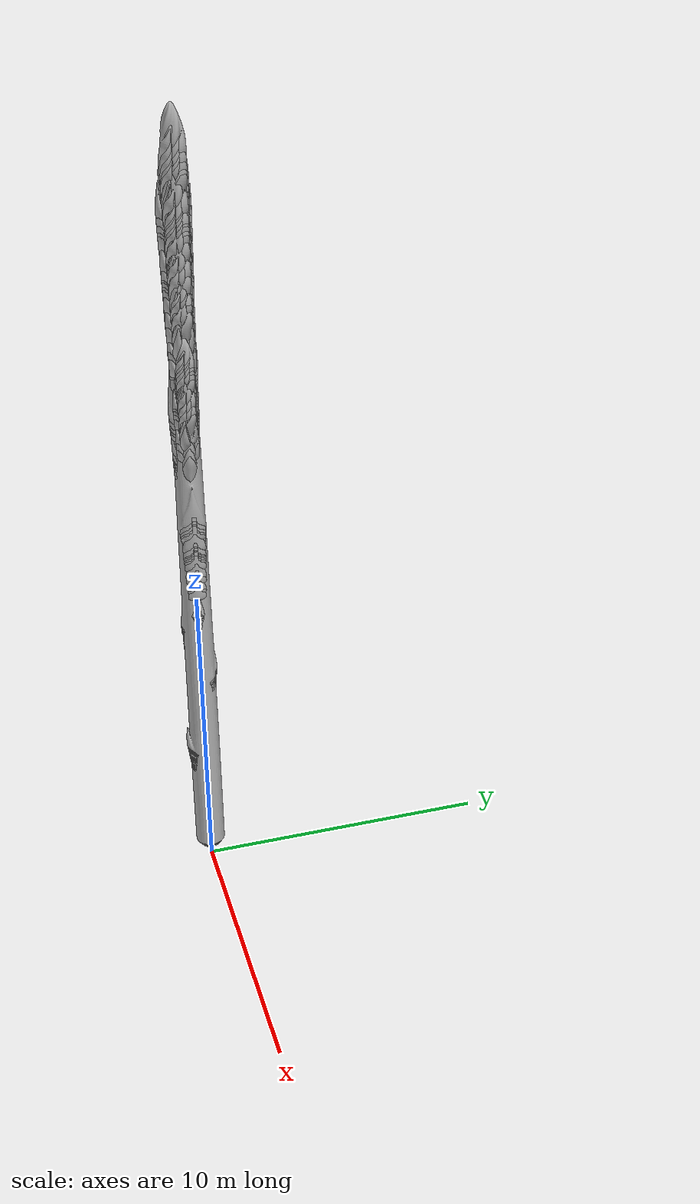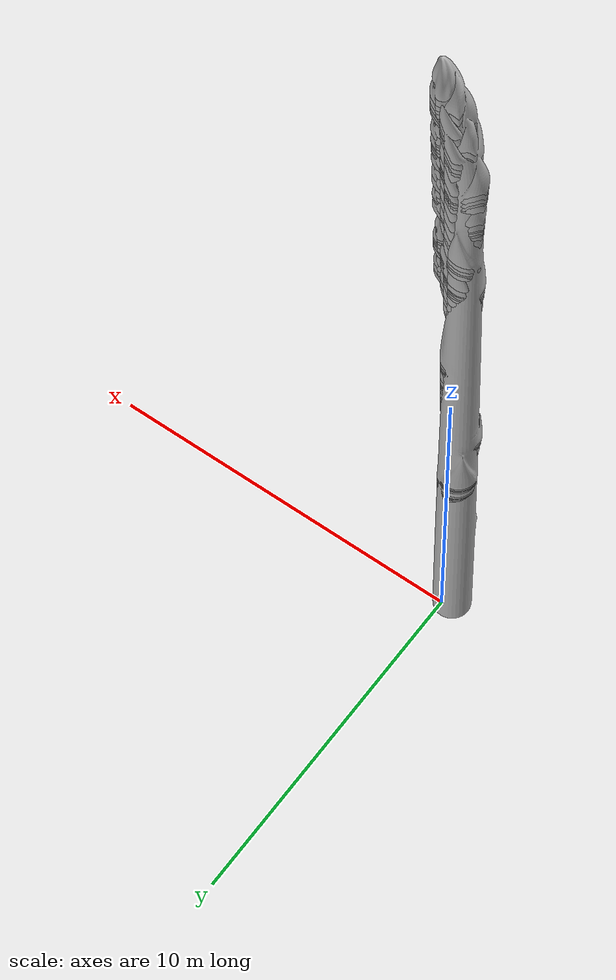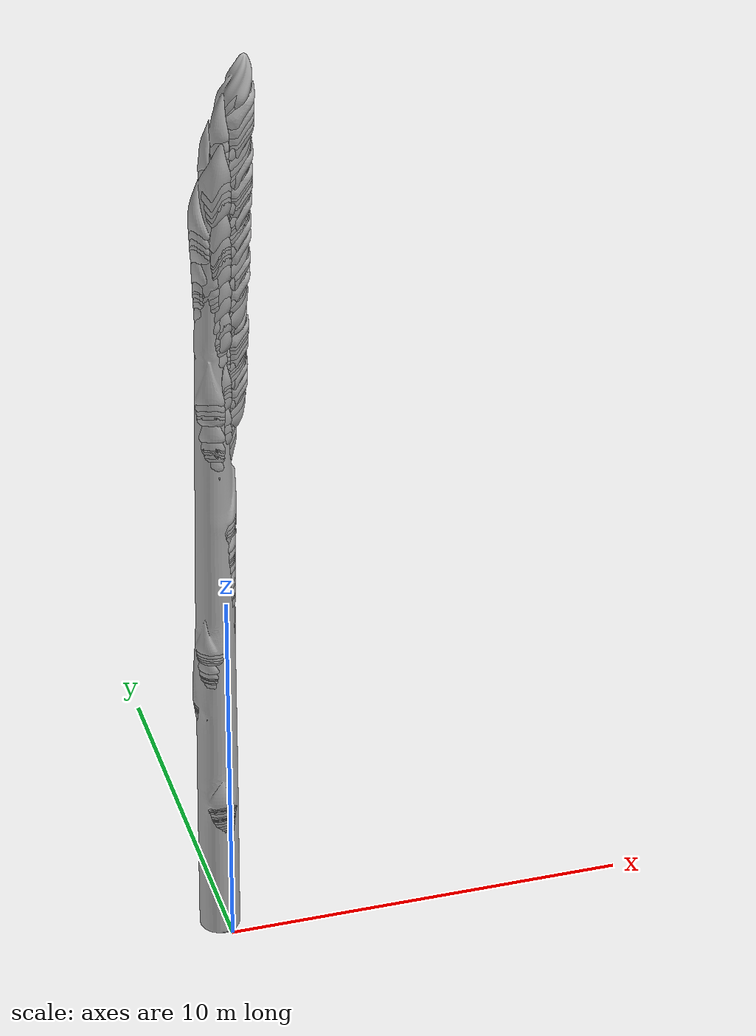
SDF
<sdf version="1.6">
 <world name="default">
  <model name="asparagus_50">
   <static>1</static>
   <link name="asparagus_50">
    <visual name="visual">
     <geometry>
      <mesh>
       <uri>home/adeeb/asparagus_ws/src/models/Asparagus/meshes/asparagus.obj</uri>
       <scale>0.837813 0.837813 0.837813</scale>
      </mesh>
     </geometry>
    </visual>
    <collision name="collision">
     <geometry>
      <mesh>
       <uri>home/adeeb/asparagus_ws/src/models/Asparagus/meshes/asparagus.obj</uri>
       <scale>0.837813 0.837813 0.837813</scale>
      </mesh>
     </geometry>
    </collision>
   </link>
  </model>
  <model name="asparagus_51">
   <static>1</static>
   <link name="asparagus_51">
    <visual name="visual">
     <geometry>
      <mesh>
       <uri>home/adeeb/asparagus_ws/src/models/Asparagus/meshes/asparagus.obj</uri>
       <scale>1.17166 1.17166 1.17166</scale>
      </mesh>
     </geometry>
    </visual>
    <collision name="collision">
     <geometry>
      <mesh>
       <uri>home/adeeb/asparagus_ws/src/models/Asparagus/meshes/asparagus.obj</uri>
       <scale>1.17166 1.17166 1.17166</scale>
      </mesh>
     </geometry>
    </collision>
   </link>
  </model>
  <model name="asparagus_52">
   <static>1</static>
   <link name="asparagus_52">
    <visual name="visual">
     <geometry>
      <mesh>
       <uri>home/adeeb/asparagus_ws/src/models/Asparagus/meshes/asparagus.obj</uri>
       <scale>0.882608 0.882608 0.882608</scale>
      </mesh>
     </geometry>
    </visual>
    <collision name="collision">
     <geometry>
      <mesh>
       <uri>home/adeeb/asparagus_ws/src/models/Asparagus/meshes/asparagus.obj</uri>
       <scale>0.882608 0.882608 0.882608</scale>
      </mesh>
     </geometry>
    </collision>
   </link>
  </model>
  <model name="asparagus_53">
   <static>1</static>
   <link name="asparagus_53">
    <visual name="visual">
     <geometry>
      <mesh>
       <uri>home/adeeb/asparagus_ws/src/models/Asparagus/meshes/asparagus.obj</uri>
       <scale>1.0931 1.0931 1.0931</scale>
      </mesh>
     </geometry>
    </visual>
    <collision name="collision">
     <geometry>
      <mesh>
       <uri>home/adeeb/asparagus_ws/src/models/Asparagus/meshes/asparagus.obj</uri>
       <scale>1.0931 1.0931 1.0931</scale>
      </mesh>
     </geometry>
    </collision>
   </link>
  </model>
  <model name="asparagus_54">
   <static>1</static>
   <link name="asparagus_54">
    <visual name="visual">
     <geometry>
      <mesh>
       <uri>home/adeeb/asparagus_ws/src/models/Asparagus/meshes/asparagus.obj</uri>
       <scale>0.822072 0.822072 0.822072</scale>
      </mesh>
     </geometry>
    </visual>
    <collision name="collision">
     <geometry>
      <mesh>
       <uri>home/adeeb/asparagus_ws/src/models/Asparagus/meshes/asparagus.obj</uri>
       <scale>0.822072 0.822072 0.822072</scale>
      </mesh>
     </geometry>
    </collision>
   </link>
  </model>
  <model name="asparagus_55">
   <static>1</static>
   <link name="asparagus_55">
    <visual name="visual">
     <geometry>
      <mesh>
       <uri>home/adeeb/asparagus_ws/src/models/Asparagus/meshes/asparagus.obj</uri>
       <scale>0.875296 0.875296 0.875296</scale>
      </mesh>
     </geometry>
    </visual>
    <collision name="collision">
     <geometry>
      <mesh>
       <uri>home/adeeb/asparagus_ws/src/models/Asparagus/meshes/asparagus.obj</uri>
       <scale>0.875296 0.875296 0.875296</scale>
      </mesh>
     </geometry>
    </collision>
   </link>
  </model>
  <model name="asparagus_56">
   <static>1</static>
   <link name="asparagus_56">
    <visual name="visual">
     <geometry>
      <mesh>
       <uri>home/adeeb/asparagus_ws/src/models/Asparagus/meshes/asparagus.obj</uri>
       <scale>0.886149 0.886149 0.886149</scale>
      </mesh>
     </geometry>
    </visual>
    <collision name="collision">
     <geometry>
      <mesh>
       <uri>home/adeeb/asparagus_ws/src/models/Asparagus/meshes/asparagus.obj</uri>
       <scale>0.886149 0.886149 0.886149</scale>
      </mesh>
     </geometry>
    </collision>
   </link>
  </model>
  <model name="asparagus_57">
   <static>1</static>
   <link name="asparagus_57">
    <visual name="visual">
     <geometry>
      <mesh>
       <uri>home/adeeb/asparagus_ws/src/models/Asparagus/meshes/asparagus.obj</uri>
       <scale>1.12089 1.12089 1.12089</scale>
      </mesh>
     </geometry>
    </visual>
    <collision name="collision">
     <geometry>
      <mesh>
       <uri>home/adeeb/asparagus_ws/src/models/Asparagus/meshes/asparagus.obj</uri>
       <scale>1.12089 1.12089 1.12089</scale>
      </mesh>
     </geometry>
    </collision>
   </link>
  </model>
  <model name="asparagus_58">
   <static>1</static>
   <link name="asparagus_58">
    <visual name="visual">
     <geometry>
      <mesh>
       <uri>home/adeeb/asparagus_ws/src/models/Asparagus/meshes/asparagus.obj</uri>
       <scale>1.07839 1.07839 1.07839</scale>
      </mesh>
     </geometry>
    </visual>
    <collision name="collision">
     <geometry>
      <mesh>
       <uri>home/adeeb/asparagus_ws/src/models/Asparagus/meshes/asparagus.obj</uri>
       <scale>1.07839 1.07839 1.07839</scale>
      </mesh>
     </geometry>
    </collision>
   </link>
  </model>
  <model name="asparagus_59">
   <static>1</static>
   <link name="asparagus_59">
    <visual name="visual">
     <geometry>
      <mesh>
       <uri>home/adeeb/asparagus_ws/src/models/Asparagus/meshes/asparagus.obj</uri>
       <scale>1.18206 1.18206 1.18206</scale>
      </mesh>
     </geometry>
    </visual>
    <collision name="collision">
     <geometry>
      <mesh>
       <uri>home/adeeb/asparagus_ws/src/models/Asparagus/meshes/asparagus.obj</uri>
       <scale>1.18206 1.18206 1.18206</scale>
      </mesh>
     </geometry>
    </collision>
   </link>
  </model>
  <model name="asparagus_60">
   <static>1</static>
   <link name="asparagus_60">
    <visual name="visual">
     <geometry>
      <mesh>
       <uri>home/adeeb/asparagus_ws/src/models/Asparagus/meshes/asparagus.obj</uri>
       <scale>1.16261 1.16261 1.16261</scale>
      </mesh>
     </geometry>
    </visual>
    <collision name="collision">
     <geometry>
      <mesh>
       <uri>home/adeeb/asparagus_ws/src/models/Asparagus/meshes/asparagus.obj</uri>
       <scale>1.16261 1.16261 1.16261</scale>
      </mesh>
     </geometry>
    </collision>
   </link>
  </model>
  <model name="asparagus_61">
   <static>1</static>
   <link name="asparagus_61">
    <visual name="visual">
     <geometry>
      <mesh>
       <uri>home/adeeb/asparagus_ws/src/models/Asparagus/meshes/asparagus.obj</uri>
       <scale>0.867189 0.867189 0.867189</scale>
      </mesh>
     </geometry>
    </visual>
    <collision name="collision">
     <geometry>
      <mesh>
       <uri>home/adeeb/asparagus_ws/src/models/Asparagus/meshes/asparagus.obj</uri>
       <scale>0.867189 0.867189 0.867189</scale>
      </mesh>
     </geometry>
    </collision>
   </link>
  </model>
  <model name="asparagus_62">
   <static>1</static>
   <link name="asparagus_62">
    <visual name="visual">
     <geometry>
      <mesh>
       <uri>home/adeeb/asparagus_ws/src/models/Asparagus/meshes/asparagus.obj</uri>
       <scale>1.07956 1.07956 1.07956</scale>
      </mesh>
     </geometry>
    </visual>
    <collision name="collision">
     <geometry>
      <mesh>
       <uri>home/adeeb/asparagus_ws/src/models/Asparagus/meshes/asparagus.obj</uri>
       <scale>1.07956 1.07956 1.07956</scale>
      </mesh>
     </geometry>
    </collision>
   </link>
  </model>
  <model name="asparagus_63">
   <static>1</static>
   <link name="asparagus_63">
    <visual name="visual">
     <geometry>
      <mesh>
       <uri>home/adeeb/asparagus_ws/src/models/Asparagus/meshes/asparagus.obj</uri>
       <scale>1.08977 1.08977 1.08977</scale>
      </mesh>
     </geometry>
    </visual>
    <collision name="collision">
     <geometry>
      <mesh>
       <uri>home/adeeb/asparagus_ws/src/models/Asparagus/meshes/asparagus.obj</uri>
       <scale>1.08977 1.08977 1.08977</scale>
      </mesh>
     </geometry>
    </collision>
   </link>
  </model>
  <model name="asparagus_64">
   <static>1</static>
   <link name="asparagus_64">
    <visual name="visual">
     <geometry>
      <mesh>
       <uri>home/adeeb/asparagus_ws/src/models/Asparagus/meshes/asparagus.obj</uri>
       <scale>1.03037 1.03037 1.03037</scale>
      </mesh>
     </geometry>
    </visual>
    <collision name="collision">
     <geometry>
      <mesh>
       <uri>home/adeeb/asparagus_ws/src/models/Asparagus/meshes/asparagus.obj</uri>
       <scale>1.03037 1.03037 1.03037</scale>
      </mesh>
     </geometry>
    </collision>
   </link>
  </model>
  <model name="asparagus_65">
   <static>1</static>
   <link name="asparagus_65">
    <visual name="visual">
     <geometry>
      <mesh>
       <uri>home/adeeb/asparagus_ws/src/models/Asparagus/meshes/asparagus.obj</uri>
       <scale>1.15918 1.15918 1.15918</scale>
      </mesh>
     </geometry>
    </visual>
    <collision name="collision">
     <geometry>
      <mesh>
       <uri>home/adeeb/asparagus_ws/src/models/Asparagus/meshes/asparagus.obj</uri>
       <scale>1.15918 1.15918 1.15918</scale>
      </mesh>
     </geometry>
    </collision>
   </link>
  </model>
  <model name="asparagus_66">
   <static>1</static>
   <link name="asparagus_66">
    <visual name="visual">
     <geometry>
      <mesh>
       <uri>home/adeeb/asparagus_ws/src/models/Asparagus/meshes/asparagus.obj</uri>
       <scale>0.960018 0.960018 0.960018</scale>
      </mesh>
     </geometry>
    </visual>
    <collision name="collision">
     <geometry>
      <mesh>
       <uri>home/adeeb/asparagus_ws/src/models/Asparagus/meshes/asparagus.obj</uri>
       <scale>0.960018 0.960018 0.960018</scale>
      </mesh>
     </geometry>
    </collision>
   </link>
  </model>
  <model name="asparagus_67">
   <static>1</static>
   <link name="asparagus_67">
    <visual name="visual">
     <geometry>
      <mesh>
       <uri>home/adeeb/asparagus_ws/src/models/Asparagus/meshes/asparagus.obj</uri>
       <scale>1.01321 1.01321 1.01321</scale>
      </mesh>
     </geometry>
    </visual>
    <collision name="collision">
     <geometry>
      <mesh>
       <uri>home/adeeb/asparagus_ws/src/models/Asparagus/meshes/asparagus.obj</uri>
       <scale>1.01321 1.01321 1.01321</scale>
      </mesh>
     </geometry>
    </collision>
   </link>
  </model>
  <model name="asparagus_68">
   <static>1</static>
   <link name="asparagus_68">
    <visual name="visual">
     <geometry>
      <mesh>
       <uri>home/adeeb/asparagus_ws/src/models/Asparagus/meshes/asparagus.obj</uri>
       <scale>0.982197 0.982197 0.982197</scale>
      </mesh>
     </geometry>
    </visual>
    <collision name="collision">
     <geometry>
      <mesh>
       <uri>home/adeeb/asparagus_ws/src/models/Asparagus/meshes/asparagus.obj</uri>
       <scale>0.982197 0.982197 0.982197</scale>
      </mesh>
     </geometry>
    </collision>
   </link>
  </model>
  <model name="asparagus_69">
   <static>1</static>
   <link name="asparagus_69">
    <visual name="visual">
     <geometry>
      <mesh>
       <uri>home/adeeb/asparagus_ws/src/models/Asparagus/meshes/asparagus.obj</uri>
       <scale>1.09787 1.09787 1.09787</scale>
      </mesh>
     </geometry>
    </visual>
    <collision name="collision">
     <geometry>
      <mesh>
       <uri>home/adeeb/asparagus_ws/src/models/Asparagus/meshes/asparagus.obj</uri>
       <scale>1.09787 1.09787 1.09787</scale>
      </mesh>
     </geometry>
    </collision>
   </link>
  </model>
  <model name="asparagus_70">
   <static>1</static>
   <link name="asparagus_70">
    <visual name="visual">
     <geometry>
      <mesh>
       <uri>home/adeeb/asparagus_ws/src/models/Asparagus/meshes/asparagus.obj</uri>
       <scale>1.05926 1.05926 1.05926</scale>
      </mesh>
     </geometry>
    </visual>
    <collision name="collision">
     <geometry>
      <mesh>
       <uri>home/adeeb/asparagus_ws/src/models/Asparagus/meshes/asparagus.obj</uri>
       <scale>1.05926 1.05926 1.05926</scale>
      </mesh>
     </geometry>
    </collision>
   </link>
  </model>
  <model name="asparagus_71">
   <static>1</static>
   <link name="asparagus_71">
    <visual name="visual">
     <geometry>
      <mesh>
       <uri>home/adeeb/asparagus_ws/src/models/Asparagus/meshes/asparagus.obj</uri>
       <scale>0.892403 0.892403 0.892403</scale>
      </mesh>
     </geometry>
    </visual>
    <collision name="collision">
     <geometry>
      <mesh>
       <uri>home/adeeb/asparagus_ws/src/models/Asparagus/meshes/asparagus.obj</uri>
       <scale>0.892403 0.892403 0.892403</scale>
      </mesh>
     </geometry>
    </collision>
   </link>
  </model>
  <model name="asparagus_72">
   <static>1</static>
   <link name="asparagus_72">
    <visual name="visual">
     <geometry>
      <mesh>
       <uri>home/adeeb/asparagus_ws/src/models/Asparagus/meshes/asparagus.obj</uri>
       <scale>0.813315 0.813315 0.813315</scale>
      </mesh>
     </geometry>
    </visual>
    <collision name="collision">
     <geometry>
      <mesh>
       <uri>home/adeeb/asparagus_ws/src/models/Asparagus/meshes/asparagus.obj</uri>
       <scale>0.813315 0.813315 0.813315</scale>
      </mesh>
     </geometry>
    </collision>
   </link>
  </model>
  <model name="asparagus_73">
   <static>1</static>
   <link name="asparagus_73">
    <visual name="visual">
     <geometry>
      <mesh>
       <uri>home/adeeb/asparagus_ws/src/models/Asparagus/meshes/asparagus.obj</uri>
       <scale>0.980467 0.980467 0.980467</scale>
      </mesh>
     </geometry>
    </visual>
    <collision name="collision">
     <geometry>
      <mesh>
       <uri>home/adeeb/asparagus_ws/src/models/Asparagus/meshes/asparagus.obj</uri>
       <scale>0.980467 0.980467 0.980467</scale>
      </mesh>
     </geometry>
    </collision>
   </link>
  </model>
  <model name="asparagus_74">
   <static>1</static>
   <link name="asparagus_74">
    <visual name="visual">
     <geometry>
      <mesh>
       <uri>home/adeeb/asparagus_ws/src/models/Asparagus/meshes/asparagus.obj</uri>
       <scale>1.19693 1.19693 1.19693</scale>
      </mesh>
     </geometry>
    </visual>
    <collision name="collision">
     <geometry>
      <mesh>
       <uri>home/adeeb/asparagus_ws/src/models/Asparagus/meshes/asparagus.obj</uri>
       <scale>1.19693 1.19693 1.19693</scale>
      </mesh>
     </geometry>
    </collision>
   </link>
  </model>
 </world>
</sdf>
